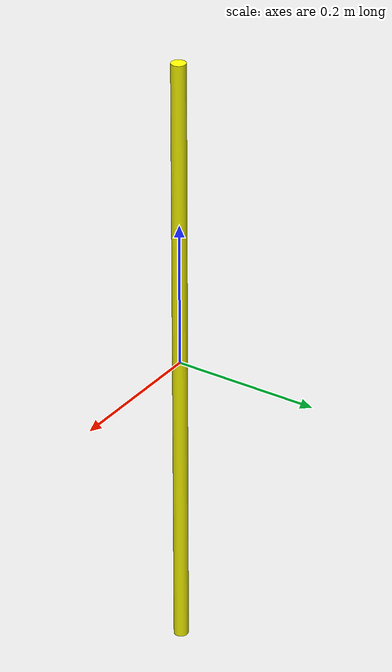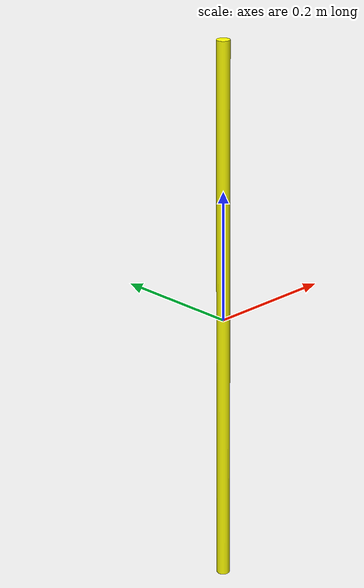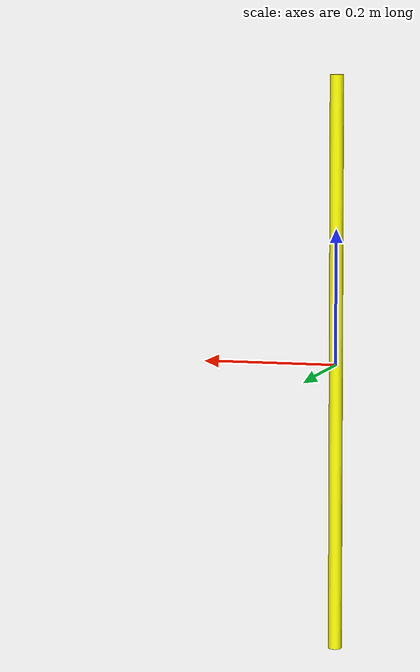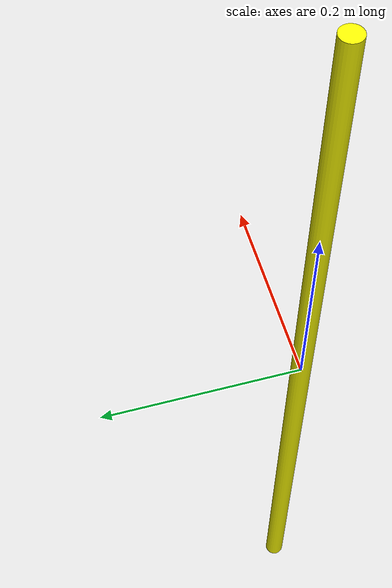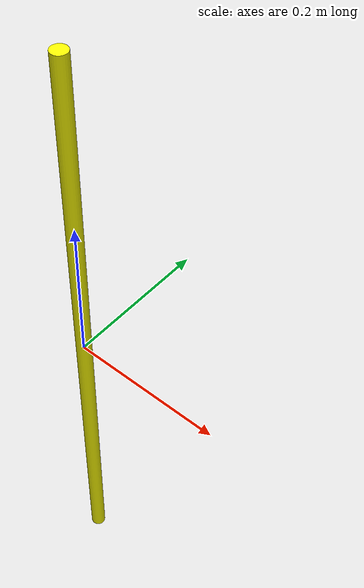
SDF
<?xml version="1.0" ?>
<sdf version="1.5">
  <model name="box">
    <link name="obstacles">
      <inertial>
        <mass>0.1</mass>
      </inertial>
      <visual name="visual">
        <pose>0 0 0 0 0 0</pose>
        <geometry>
          <cylinder>
            <radius>0.01</radius>
            <length>0.8509</length>
          </cylinder>
        </geometry>
        <material>
            <diffuse>1 1 0 1</diffuse>
        </material>
      </visual>
      <collision name="collision">
        <pose>0 0 0 0 0 0</pose>
        <geometry>
          <cylinder>
            <radius>0.01</radius>
            <length>0.8509</length>
          </cylinder>
        </geometry>
      </collision>
    </link>
  </model>
</sdf>
